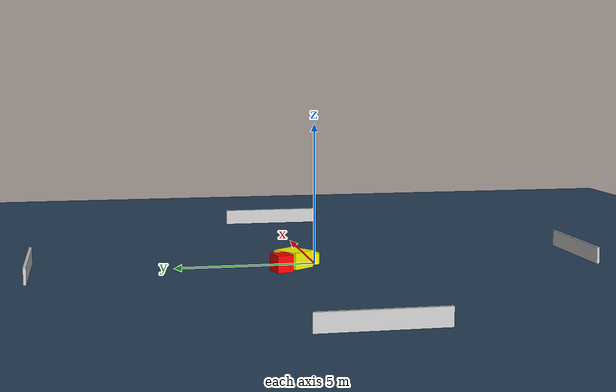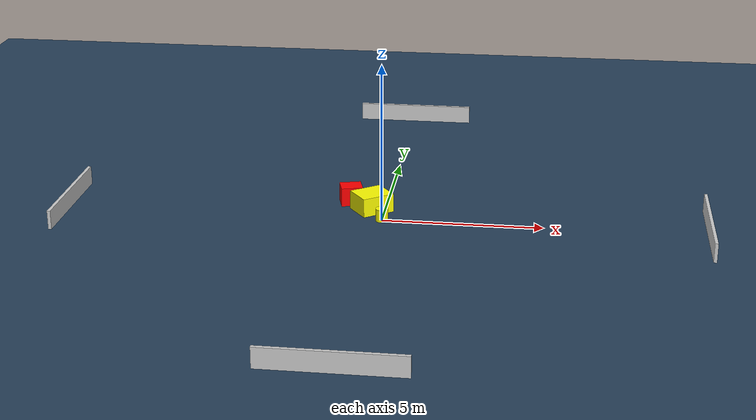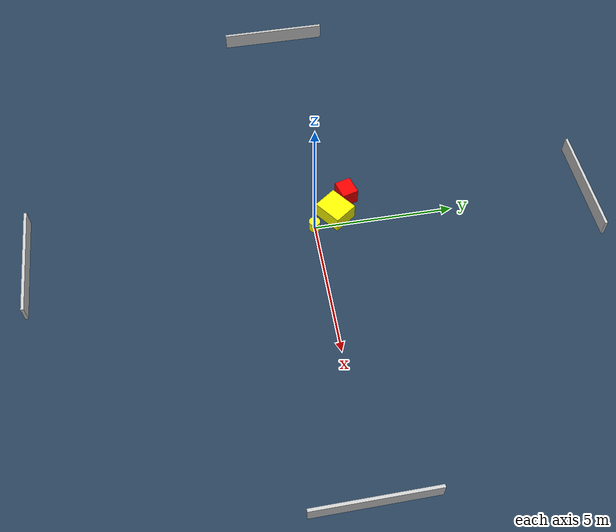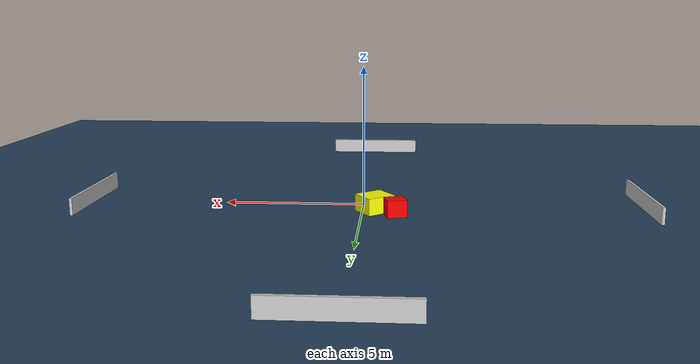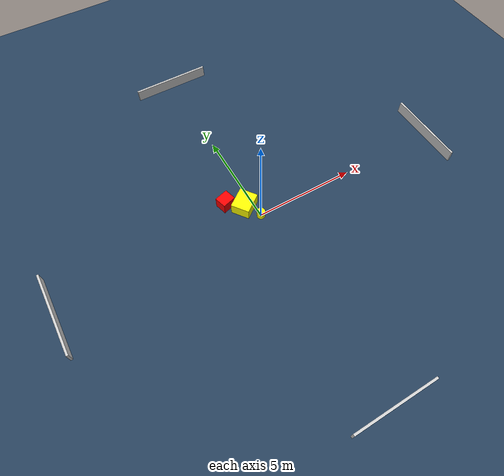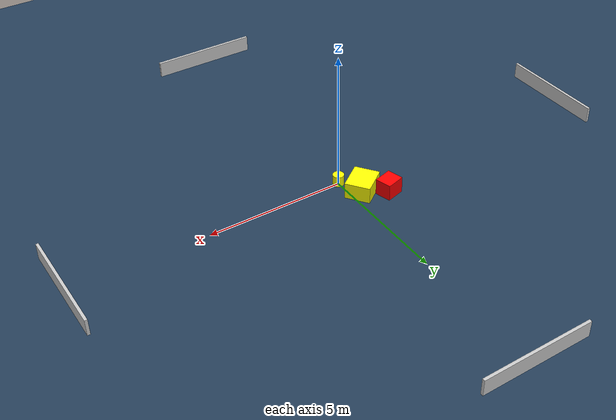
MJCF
<?xml version="1.0" ?>
<mujoco model="generated_environment">
  <option timestep="0.01" integrator="RK4" cone="elliptic"/>
  <default>
    <geom density="1"/>
  </default>
  <asset>
    <texture builtin="gradient" height="3072" name="skybox" rgb1="0.3 0.5 0.7" rgb2="0 0 0" type="skybox" width="512"/>
    <texture builtin="checker" height="300" name="groundplane" rgb1="0.2 0.3 0.4" rgb2="0.1 0.2 0.3" type="2d" width="300"/>
    <material name="groundplane" reflectance="0.2" texrepeat="5 5" texture="groundplane"/>
  </asset>
  <worldbody>
    <light dir="0 0 -1" directional="true" pos="0 0 1.5"/>
    <geom condim="3" friction="0.5 0.005 0.001" material="groundplane" name="floor" pos="0 0 0" size="0 0 0.05" type="plane"/>
    <body name="walls">
      <geom name="wall_1" condim="4" pos="-10.0 0.0 0.3" rgba="0.800000011920929 0.800000011920929 0.800000011920929 1.0" size="0.05 2.0 0.3" type="box"/>
      <geom name="wall_2" condim="4" pos="10.0 0.0 0.3" rgba="0.800000011920929 0.800000011920929 0.800000011920929 1.0" size="0.05 2.0 0.3" type="box"/>
      <geom name="wall_3" condim="4" pos="0.0 -10.0 0.3" rgba="0.800000011920929 0.800000011920929 0.800000011920929 1.0" size="2.0 0.05 0.3" type="box"/>
      <geom name="wall_4" condim="4" pos="0.0 10.0 0.3" rgba="0.800000011920929 0.800000011920929 0.800000011920929 1.0" size="2.0 0.05 0.3" type="box"/>
    </body>
    <body name="robot">
      <joint name="joint_x" type="slide" pos="0 0 0" axis="1 0 0"/>
      <joint name="joint_y" type="slide" pos="0 0 0" axis="0 1 0"/>
      <geom name="robot" type="cylinder" pos="0.0 0.0 0.2" size="0.2 0.2 0.0" mass="5.0" friction="1.0 0.005 0.0001" condim="4" rgba="1.0 1.0 0.0 1.0"/>
    </body>
    <body name="obstacle_1_movable">
      <geom name="obstacle_1_movable" condim="4" pos="-0.42963488500735064 0.8271846568712901 0.3" euler="0 0 216.2212778838149" friction="0.0 0.005 0.001" rgba="1.0 1.0 0.0 1.0" size="0.5288364505901249 0.45353520949765247 0.3" type="box" mass="0.1"/>
      <joint type="free"/>
    </body>
    <body name="obstacle_2_static">
      <geom name="obstacle_2_static" condim="4" pos="-1.1657775750765151 1.3725837656126034 0.3" euler="0 0 195.40278296710144" friction="0.0 0.005 0.001" rgba="1.0 0.0 0.0 1.0" size="0.34102763987694573 0.2977178880143993 0.3" type="box"/>
    </body>
  </worldbody>
  <actuator>
    <motor name="actuator_x" joint="joint_x" gear="1" ctrlrange="-1 1"/>
    <motor name="actuator_y" joint="joint_y" gear="1" ctrlrange="-1 1"/>
  </actuator>
</mujoco>
